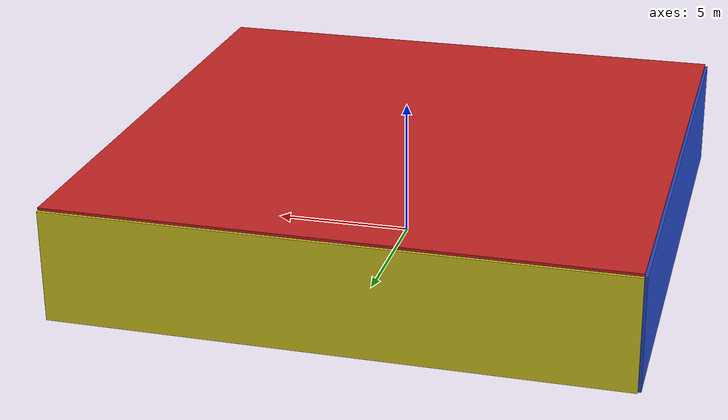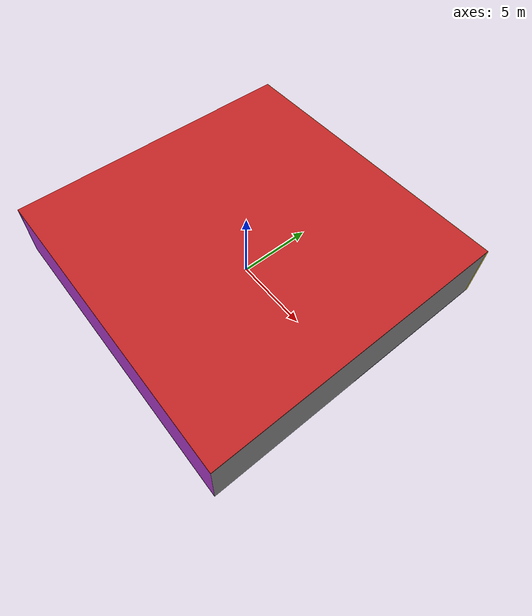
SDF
<sdf version="1.4">
 <world name="default">
  <physics type="ode">
   <max_step_size>0.001</max_step_size>
   <real_time_factor>1</real_time_factor>
   <real_time_update_rate>1000</real_time_update_rate>
   <gravity>0 0 -9.8</gravity>
  </physics>
  <scene><ambient>0.4 0.4 0.4 1</ambient><background>0.7 0.7 0.7 1</background><shadows>1</shadows></scene>
  <model name="Surrounding">
   <static>1</static>
   <link name="Ceiling">
    <collision name="Ceiling_Collision"><geometry><box><size>20 20 0.1</size></box></geometry></collision>
    <visual name="Ceiling_Visual">
     <geometry><box><size>20 20 0.1</size></box></geometry>
     <material>
      <script><uri>file://media/materials/scripts/gazebo.material</uri><name>Gazebo/RedGlow</name></script>
     </material>
    </visual>
    <pose>0 0 4.05 0 0 0</pose>
   </link>
   <link name="Wall_South">
    <collision name="Wall_South_Collision">
     <geometry><box><size>20 0 4</size></box></geometry>
     <pose>0 0 2 0 -0 0</pose>
    </collision>
    <visual name="Wall_South_Visual">
     <pose>0 0 2 0 -0 0</pose>
     <geometry><box><size>20 0 4</size></box></geometry>
     <material>
      <script><uri>file://media/materials/scripts/gazebo.material</uri><name>Gazebo/Purple</name></script>
     </material>
    </visual>
    <velocity_decay><linear>0</linear><angular>0</angular></velocity_decay>
    <pose>0 -10 0 0 -0 0</pose>
   </link>
   <link name="Wall_East">
    <collision name="Wall_21_Collision">
     <geometry><box><size>20 0 4</size></box></geometry>
     <pose>0 0 2 0 -0 0</pose>
    </collision>
    <visual name="Wall_21_Visual">
     <pose>0 0 2 0 -0 0</pose>
     <geometry><box><size>20 0 4</size></box></geometry>
     <material>
      <script><uri>file://media/materials/scripts/gazebo.material</uri><name>Gazebo/GreyGradientSky</name></script>
     </material>
    </visual>
    <velocity_decay><linear>0</linear><angular>0</angular></velocity_decay>
    <pose>10 0 0 0 -0 1.5708</pose>
   </link>
   <link name="Wall_North">
    <collision name="Wall_22_Collision">
     <geometry><box><size>20 0.2 4</size></box></geometry>
     <pose>0 0 2 0 -0 0</pose>
    </collision>
    <visual name="Wall_22_Visual">
     <pose>0 0 2 0 -0 0</pose>
     <geometry><box><size>20 0.2 4</size></box></geometry>
     <material>
      <script><uri>file://media/materials/scripts/gazebo.material</uri><name>Gazebo/YellowGlow</name></script>
     </material>
    </visual>
    <velocity_decay><linear>0</linear><angular>0</angular></velocity_decay>
    <pose>0 10 0 0 -0 0</pose>
   </link>
   <link name="Wall_West">
    <collision name="Wall_23_Collision">
     <geometry><box><size>20 0.2 4</size></box></geometry>
     <pose>0 0 2 0 -0 0</pose>
    </collision>
    <visual name="Wall_23_Visual">
     <pose>0 0 2 0 -0 0</pose>
     <geometry><box><size>20 0.2 4</size></box></geometry>
     <material>
      <script><uri>file://media/materials/scripts/gazebo.material</uri><name>Gazebo/Blue</name></script>
     </material>
    </visual>
    <velocity_decay><linear>0</linear><angular>0</angular></velocity_decay>
    <pose>-10 0 0 0 0 -1.5708</pose>
   </link>
   <link name="Ground_link">
    <collision name="collision">
     <pose>0 0 .05 0 -0 0</pose>
     <geometry><box><size>20 20 0.1</size></box></geometry>
    </collision>
    <visual name="visual">
     <pose>0 0 .05 0 -0 0</pose>
     <geometry><box><size>20 20 0.1</size></box></geometry>
     <material>
      <script><uri>file://media/materials/scripts/gazebo.material</uri><name>Gazebo/DarkGrey</name></script>
     </material>
    </visual>
   </link>
   <static>1</static>
  </model>
  <spherical_coordinates>
   <surface_model>EARTH_WGS84</surface_model>
   <latitude_deg>0</latitude_deg>
   <longitude_deg>0</longitude_deg>
   <elevation>0</elevation>
   <heading_deg>0</heading_deg>
  </spherical_coordinates>
  <light name="lightball_0" type="diffuse">
   <diffuse>0.8 0.8 0.8 1</diffuse>
   <specular>0.2 0.2 0.2 1</specular>
   <attenuation>
    <range>100</range>
    <constant>0.7</constant>
    <linear>0.01</linear>
    <quadratic>0.001</quadratic>
   </attenuation>
   <direction>-0.5 0.1 -0.9</direction>
   <pose>0.818967416106 4.43632862431 3.6014153707 0 0 0</pose>
  </light>
  <light name="lightball_1" type="diffuse">
   <diffuse>0.8 0.8 0.8 1</diffuse>
   <specular>0.2 0.2 0.2 1</specular>
   <attenuation>
    <range>100</range>
    <constant>0.7</constant>
    <linear>0.01</linear>
    <quadratic>0.001</quadratic>
   </attenuation>
   <direction>-0.5 0.1 -0.9</direction>
   <pose>3.51360103688 5.58123733745 3.57643865728 0 0 0</pose>
  </light>
  <light name="lightball_2" type="diffuse">
   <diffuse>0.8 0.8 0.8 1</diffuse>
   <specular>0.2 0.2 0.2 1</specular>
   <attenuation>
    <range>100</range>
    <constant>0.7</constant>
    <linear>0.01</linear>
    <quadratic>0.001</quadratic>
   </attenuation>
   <direction>-0.5 0.1 -0.9</direction>
   <pose>-5.743333004 -8.42768381879 1.35090787912 0 0 0</pose>
  </light>
  <light name="lightball_3" type="diffuse">
   <diffuse>0.8 0.8 0.8 1</diffuse>
   <specular>0.2 0.2 0.2 1</specular>
   <attenuation>
    <range>100</range>
    <constant>0.7</constant>
    <linear>0.01</linear>
    <quadratic>0.001</quadratic>
   </attenuation>
   <direction>-0.5 0.1 -0.9</direction>
   <pose>-3.25793110671 -7.720223324 1.35293216001 0 0 0</pose>
  </light>
  <light name="lightball_4" type="diffuse">
   <diffuse>0.8 0.8 0.8 1</diffuse>
   <specular>0.2 0.2 0.2 1</specular>
   <attenuation>
    <range>100</range>
    <constant>0.7</constant>
    <linear>0.01</linear>
    <quadratic>0.001</quadratic>
   </attenuation>
   <direction>-0.5 0.1 -0.9</direction>
   <pose>-9.70295508997 5.05297481324 1.91232105578 0 0 0</pose>
  </light>
  <light name="lightball_5" type="diffuse">
   <diffuse>0.8 0.8 0.8 1</diffuse>
   <specular>0.2 0.2 0.2 1</specular>
   <attenuation>
    <range>100</range>
    <constant>0.7</constant>
    <linear>0.01</linear>
    <quadratic>0.001</quadratic>
   </attenuation>
   <direction>-0.5 0.1 -0.9</direction>
   <pose>-7.86719763498 6.31478629847 1.7055659363 0 0 0</pose>
  </light>
  <light name="lightball_6" type="diffuse">
   <diffuse>0.8 0.8 0.8 1</diffuse>
   <specular>0.2 0.2 0.2 1</specular>
   <attenuation>
    <range>100</range>
    <constant>0.7</constant>
    <linear>0.01</linear>
    <quadratic>0.001</quadratic>
   </attenuation>
   <direction>-0.5 0.1 -0.9</direction>
   <pose>-2.89545392044 2.3379993949 3.46123470791 0 0 0</pose>
  </light>
  <light name="lightball_7" type="diffuse">
   <diffuse>0.8 0.8 0.8 1</diffuse>
   <specular>0.2 0.2 0.2 1</specular>
   <attenuation>
    <range>100</range>
    <constant>0.7</constant>
    <linear>0.01</linear>
    <quadratic>0.001</quadratic>
   </attenuation>
   <direction>-0.5 0.1 -0.9</direction>
   <pose>-4.91613058514 -0.457762311794 2.26239953212 0 0 0</pose>
  </light>
  <include>
   <uri>model://textured_shapes</uri>
   <pose>-7.02499106945 5.53274435409 0 0 0 2.82512984783</pose>
  </include>
  <include><uri>model://table</uri><pose>-8.24502936375 7.85857714021 0 0 0 0.430507096068</pose></include>
  <include><uri>model://cabinet</uri><pose>-3.70375143462 -7.88066788254 0 0 0 2.64781265697</pose></include>
  <include>
   <uri>model://construction_cone</uri>
   <pose>2.64673434805 8.21679420559 0 0 0 0.744293326981</pose>
  </include>
  <include>
   <uri>model://construction_cone</uri>
   <pose>4.26596092947 1.64436066797 0 0 0 1.96644572996</pose>
  </include>
  <include><uri>model://table</uri><pose>6.36810788139 -8.18676100605 0 0 0 1.15413574432</pose></include>
  <include><uri>model://cabinet</uri><pose>8.27044431412 -0.605047563778 0 0 0 1.35796189767</pose></include>
 </world>
</sdf>

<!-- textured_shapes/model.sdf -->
<sdf version="1.6">
  <model name="textured_shapes">
    <pose>0 0 0.5 0 0 0</pose>
    <link name="box">
      <pose>0 -1.5 0 0 0 0</pose>
      <collision name="collision">
        <geometry>
          <box>
            <size>1 1 1</size>
          </box>
        </geometry>
      </collision>
      <visual name="visual">
        <geometry>
          <box>
            <size>1 1 1</size>
          </box>
        </geometry>
        <material>
          <script>
            <uri>model://../model_source/models/textured_shapes/materials/scripts</uri>
            <uri>model://../model_source/models/textured_shapes/materials/textures</uri>
            <name>TexturedShape/Squares</name>
          </script>
        </material>
      </visual>
    </link>
    <link name="sphere">
      <collision name="collision">
        <geometry>
          <sphere>
            <radius>0.5</radius>
          </sphere>
        </geometry>
      </collision>
      <visual name="visual">
        <geometry>
          <sphere>
            <radius>0.5</radius>
          </sphere>
        </geometry>
        <material>
          <script>
            <uri>model://../model_source/models/textured_shapes/materials/scripts</uri>
            <uri>model://../model_source/models/textured_shapes/materials/textures</uri>
            <name>TexturedShape/Squares</name>
          </script>
        </material>
      </visual>
    </link>
    <link name="cylinder">
      <pose>0 1.5 0 0 0 0</pose>
      <collision name="collision">
        <geometry>
          <cylinder>
            <radius>0.5</radius>
            <length>1</length>
          </cylinder>
        </geometry>
      </collision>
      <visual name="visual">
        <geometry>
          <cylinder>
            <radius>0.5</radius>
            <length>1</length>
          </cylinder>
        </geometry>
        <material>
          <script>
            <uri>model://../model_source/models/textured_shapes/materials/scripts</uri>
            <uri>model://../model_source/models/textured_shapes/materials/textures</uri>
            <name>TexturedShape/Squares</name>
          </script>
        </material>
      </visual>
    </link>
  </model>
</sdf>

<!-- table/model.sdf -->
<sdf version="1.5">
  <model name="table">
    <static>true</static>
    <link name="link">
      <collision name="surface">
        <pose>0 0 1.0 0 0 0</pose>
        <geometry>
          <box>
            <size>1.5 0.8 0.03</size>
          </box>
        </geometry>
        <surface>
          <friction>
            <ode>
              <mu>0.6</mu>
              <mu2>0.6</mu2>
            </ode>
          </friction>
        </surface>
      </collision>
      <visual name="visual1">
        <pose>0 0 1.0 0 0 0</pose>
        <geometry>
          <box>
            <size>1.5 0.8 0.03</size>
          </box>
        </geometry>
        <material>
          <script>
            <uri>model://media/materials/scripts/gazebo.material</uri>
            <name>Gazebo/Wood</name>
          </script>
        </material>
      </visual>
      <collision name="front_left_leg">
        <pose>0.68 0.38 0.5 0 0 0</pose>
        <geometry>
          <cylinder>
            <radius>0.02</radius>
            <length>1.0</length>
          </cylinder>
        </geometry>
      </collision>
      <visual name="front_left_leg">
        <pose>0.68 0.38 0.5 0 0 0</pose>
        <geometry>
          <cylinder>
            <radius>0.02</radius>
            <length>1.0</length>
          </cylinder>
        </geometry>
        <material>
          <script>
            <uri>model://media/materials/scripts/gazebo.material</uri>
            <name>Gazebo/Grey</name>
          </script>
        </material>
      </visual>
      <collision name="front_right_leg">
        <pose>0.68 -0.38 0.5 0 0 0</pose>
        <geometry>
          <cylinder>
            <radius>0.02</radius>
            <length>1.0</length>
          </cylinder>
        </geometry>
      </collision>
      <visual name="front_right_leg">
        <pose>0.68 -0.38 0.5 0 0 0</pose>
        <geometry>
          <cylinder>
            <radius>0.02</radius>
            <length>1.0</length>
          </cylinder>
        </geometry>
        <material>
          <script>
            <uri>model://media/materials/scripts/gazebo.material</uri>
            <name>Gazebo/Grey</name>
          </script>
        </material>
      </visual>
      <collision name="back_right_leg">
        <pose>-0.68 -0.38 0.5 0 0 0</pose>
        <geometry>
          <cylinder>
            <radius>0.02</radius>
            <length>1.0</length>
          </cylinder>
        </geometry>
      </collision>
      <visual name="back_right_leg">
        <pose>-0.68 -0.38 0.5 0 0 0</pose>
        <geometry>
          <cylinder>
            <radius>0.02</radius>
            <length>1.0</length>
          </cylinder>
        </geometry>
        <material>
          <script>
            <uri>model://media/materials/scripts/gazebo.material</uri>
            <name>Gazebo/Grey</name>
          </script>
        </material>
      </visual>
      <collision name="back_left_leg">
        <pose>-0.68 0.38 0.5 0 0 0</pose>
        <geometry>
          <cylinder>
            <radius>0.02</radius>
            <length>1.0</length>
          </cylinder>
        </geometry>
      </collision>
      <visual name="back_left_leg">
        <pose>-0.68 0.38 0.5 0 0 0</pose>
        <geometry>
          <cylinder>
            <radius>0.02</radius>
            <length>1.0</length>
          </cylinder>
        </geometry>
        <material>
          <script>
            <uri>model://media/materials/scripts/gazebo.material</uri>
            <name>Gazebo/Grey</name>
          </script>
        </material>
      </visual>
    </link>
  </model>
</sdf>

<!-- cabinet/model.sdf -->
<sdf version="1.5">
  <model name="cabinet">
    <static>true</static>
    <link name="cabinet_bottom_plate">
      <inertial>
        <pose>0 0 -1 0 0 0</pose>
        <inertia>
          <ixx>2.050000</ixx>
          <ixy>0</ixy>
          <ixz>0</ixz>
          <iyy>2.050000</iyy>
          <iyz>0</iyz>
          <izz>2.050000</izz>
        </inertia>
        <mass>25.000000</mass>
      </inertial>
      <collision name="cabinet_bottom_plate_geom">
        <pose>0 0 0.010000 0 0 0</pose>
        <geometry>
          <box>
            <size>0.450000 0.450000 0.020000</size>
          </box>
        </geometry>
      </collision>
      <visual name="cabinet_bottom_plate_geom_visual">
        <pose>0 0 0.010000 0 0 0</pose>
        <geometry>
          <box>
            <size>0.450000 0.450000 0.020000</size>
          </box>
        </geometry>
        <material>
          <script>
            <uri>model://media/materials/scripts/gazebo.material</uri>
            <name>Gazebo/Wood</name>
          </script>
        </material>
      </visual>
      <collision name="cabinet_bottom_plate_geom_cabinet_back_plate">
        <pose>0.235000 0 0.510000 0 0 0</pose>
        <geometry>
          <box>
            <size>0.020000 0.450000 1.020000</size>
          </box>
        </geometry>
      </collision>
      <visual name="cabinet_bottom_plate_geom_cabinet_back_plate_visual">
        <pose>0.235000 0 0.510000 0 0 0</pose>
        <geometry>
          <box>
            <size>0.020000 0.450000 1.020000</size>
          </box>
        </geometry>
        <material>
          <script>
            <uri>model://media/materials/scripts/gazebo.material</uri>
            <name>Gazebo/Wood</name>
          </script>
        </material>
      </visual>
      <collision name="cabinet_bottom_plate_geom_cabinet_left_plate">
        <pose>0 0.235000 0.510000 0 0 0</pose>
        <geometry>
          <box>
            <size>0.450000 0.020000 1.020000</size>
          </box>
        </geometry>
      </collision>
      <visual name="cabinet_bottom_plate_geom_cabinet_left_plate_visual">
        <pose>0 0.235000 0.510000 0 0 0</pose>
        <geometry>
          <box>
            <size>0.450000 0.020000 1.020000</size>
          </box>
        </geometry>
        <material>
          <script>
            <uri>model://media/materials/scripts/gazebo.material</uri>
            <name>Gazebo/Wood</name>
          </script>
        </material>
      </visual>
      <collision name="cabinet_bottom_plate_geom_cabinet_middle_plate">
        <pose>0 0 0.510000 0 0 0</pose>
        <geometry>
          <box>
            <size>0.450000 0.450000 0.020000</size>
          </box>
        </geometry>
      </collision>
      <visual name="cabinet_bottom_plate_geom_cabinet_middle_plate_visual">
        <pose>0 0 0.510000 0 0 0</pose>
        <geometry>
          <box>
            <size>0.450000 0.450000 0.020000</size>
          </box>
        </geometry>
        <material>
          <script>
            <uri>model://media/materials/scripts/gazebo.material</uri>
            <name>Gazebo/Wood</name>
          </script>
        </material>
      </visual>
      <collision name="cabinet_bottom_plate_geom_cabinet_right_plate">
        <pose>0 -0.235000 0.510000 0 0 0</pose>
        <geometry>
          <box>
            <size>0.450000 0.020000 1.020000</size>
          </box>
        </geometry>
      </collision>
      <visual name="cabinet_bottom_plate_geom_cabinet_right_plate_visual">
        <pose>0 -0.235000 0.510000 0 0 0</pose>
        <geometry>
          <box>
            <size>0.450000 0.020000 1.020000</size>
          </box>
        </geometry>
        <material>
          <script>
            <uri>model://media/materials/scripts/gazebo.material</uri>
            <name>Gazebo/Wood</name>
          </script>
        </material>
      </visual>
      <collision name="cabinet_bottom_plate_geom_cabinet_top_plate">
        <pose>0 0 1.010000 0 0 0</pose>
        <geometry>
          <box>
            <size>0.450000 0.450000 0.020000</size>
          </box>
        </geometry>
      </collision>
      <visual name="cabinet_bottom_plate_geom_cabinet_top_plate_visual">
        <pose>0 0 1.010000 0 0 0</pose>
        <geometry>
          <box>
            <size>0.450000 0.450000 0.020000</size>
          </box>
        </geometry>
        <material>
          <script>
            <uri>model://media/materials/scripts/gazebo.material</uri>
            <name>Gazebo/Wood</name>
          </script>
        </material>
      </visual>
    </link>
  </model>
</sdf>

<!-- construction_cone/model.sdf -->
<sdf version="1.5">
  <model name="Construction Cone">
    <link name="link">
      <collision name="collision">
        <geometry>
          <mesh>
            <scale>10 10 10</scale>
            <uri>file://isr-testbed/construction_cone/meshes/construction_cone.dae</uri>
          </mesh>
        </geometry>
      </collision>
      <visual name="visual">
        <geometry>
          <mesh>
            <scale>10 10 10</scale>
            <uri>file://isr-testbed/construction_cone/meshes/construction_cone.dae</uri>
          </mesh>
        </geometry>
      </visual>
    </link>
  </model>
</sdf>
